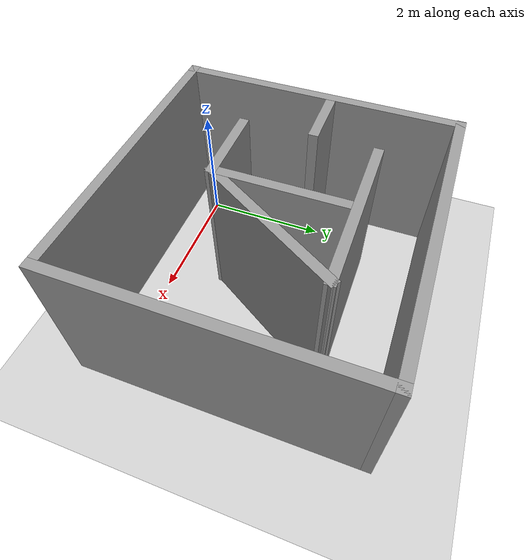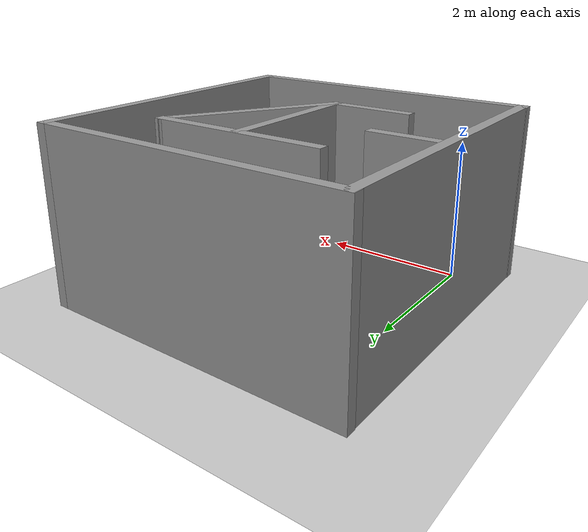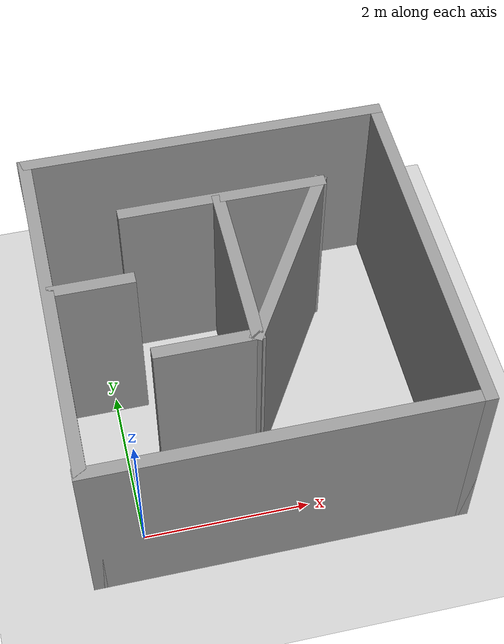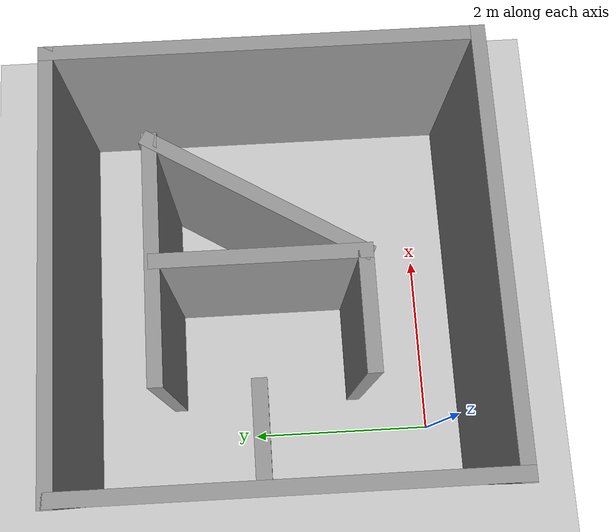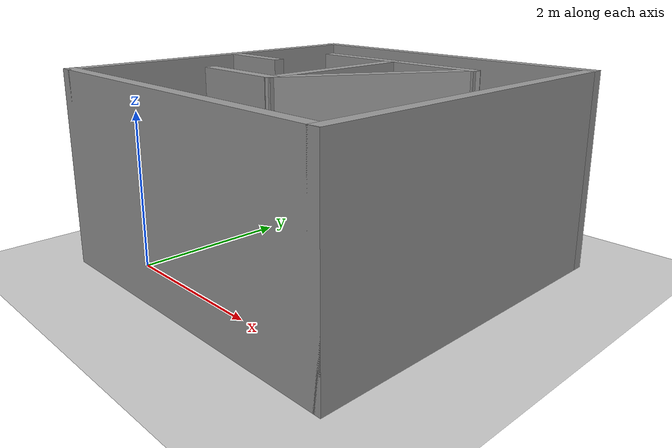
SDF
<sdf version="1.7">
 <world name="default">
  <light name="sun" type="directional">
   <pose>0 0 10 0 -0 0</pose>
   <diffuse>0.8 0.8 0.8 1</diffuse>
   <specular>0.2 0.2 0.2 1</specular>
   <attenuation>
    <range>1000</range>
    <constant>0.9</constant>
    <linear>0.01</linear>
    <quadratic>0.001</quadratic>
   </attenuation>
   <direction>-0.5 0.1 -0.9</direction>
   <spot><inner_angle>0</inner_angle><outer_angle>0</outer_angle><falloff>0</falloff></spot>
  </light>
  <model name="ground_plane">
   <static>1</static>
   <link name="link">
    <collision name="collision">
     <geometry><plane><normal>0 0 1</normal><size>100 100</size></plane></geometry>
     <surface>
      <contact><collide_bitmask>65535</collide_bitmask></contact>
      <friction><ode><mu>100</mu><mu2>50</mu2></ode></friction>
     </surface>
    </collision>
    <visual name="visual">
     <cast_shadows>0</cast_shadows>
     <geometry><plane><normal>0 0 1</normal><size>100 100</size></plane></geometry>
     <material>
      <script><uri>file://media/materials/scripts/gazebo.material</uri><name>Gazebo/Grey</name></script>
     </material>
    </visual>
   </link>
  </model>
  <gravity>0 0 -9.8</gravity>
  <magnetic_field>6e-06 2.3e-05 -4.2e-05</magnetic_field>
  <atmosphere type="adiabatic"/>
  <physics type="ode">
   <max_step_size>0.003</max_step_size>
   <real_time_factor>1</real_time_factor>
   <real_time_update_rate>1000</real_time_update_rate>
  </physics>
  <scene><ambient>0.4 0.4 0.4 1</ambient><background>0.7 0.7 0.7 1</background><shadows>1</shadows></scene>
  <spherical_coordinates>
   <surface_model>EARTH_WGS84</surface_model>
   <latitude_deg>0</latitude_deg>
   <longitude_deg>0</longitude_deg>
   <elevation>0</elevation>
   <heading_deg>0</heading_deg>
  </spherical_coordinates>
  <model name="placed_19_2_1">
   <pose>1.57119 1.70752 0 0 -0 0</pose>
   <link name="Wall_0">
    <collision name="Wall_0_Collision">
     <geometry><box><size>4.5 0.15 2.5</size></box></geometry>
     <pose>0 0 1.25 0 -0 0</pose>
    </collision>
    <visual name="Wall_0_Visual">
     <pose>0 0 1.25 0 -0 0</pose>
     <geometry><box><size>4.5 0.15 2.5</size></box></geometry>
     <material>
      <script><uri>file://media/materials/scripts/gazebo.material</uri><name>Gazebo/Grey</name></script>
      <ambient>1 1 1 1</ambient>
     </material>
     <meta><layer>0</layer></meta>
    </visual>
    <pose>-2.175 -0 0 0 -0 -1.5708</pose>
   </link>
   <link name="Wall_1">
    <collision name="Wall_1_Collision">
     <geometry><box><size>4.52 0.15 2.5</size></box></geometry>
     <pose>0 0 1.25 0 -0 0</pose>
    </collision>
    <visual name="Wall_1_Visual">
     <pose>0 0 1.25 0 -0 0</pose>
     <geometry><box><size>4.52 0.15 2.5</size></box></geometry>
     <material>
      <script><uri>file://media/materials/scripts/gazebo.material</uri><name>Gazebo/Grey</name></script>
      <ambient>1 1 1 1</ambient>
     </material>
     <meta><layer>0</layer></meta>
    </visual>
    <pose>-0 -2.175 0 0 -0 0</pose>
   </link>
   <link name="Wall_10">
    <collision name="Wall_10_Collision">
     <geometry><box><size>1.25 0.15 2.5</size></box></geometry>
     <pose>0 0 1.25 0 -0 0</pose>
    </collision>
    <visual name="Wall_10_Visual">
     <pose>0 0 1.25 0 -0 0</pose>
     <geometry><box><size>1.25 0.15 2.5</size></box></geometry>
     <material>
      <script><uri>file://media/materials/scripts/gazebo.material</uri><name>Gazebo/Grey</name></script>
      <ambient>1 1 1 1</ambient>
     </material>
     <meta><layer>0</layer></meta>
    </visual>
    <pose>-0.57 -0.87016 0 0 -0 3.14159</pose>
   </link>
   <link name="Wall_12">
    <collision name="Wall_12_Collision">
     <geometry><box><size>2.15 0.15 2.5</size></box></geometry>
     <pose>0 0 1.25 0 -0 0</pose>
    </collision>
    <visual name="Wall_12_Visual">
     <pose>0 0 1.25 0 -0 0</pose>
     <geometry><box><size>2.15 0.15 2.5</size></box></geometry>
     <material>
      <script><uri>file://media/materials/scripts/gazebo.material</uri><name>Gazebo/Grey</name></script>
      <ambient>1 1 1 1</ambient>
     </material>
     <meta><layer>0</layer></meta>
    </visual>
    <pose>-0.02 0.12984 0 0 -0 1.5708</pose>
   </link>
   <link name="Wall_2">
    <collision name="Wall_2_Collision">
     <geometry><box><size>4.5 0.15 2.5</size></box></geometry>
     <pose>0 0 1.25 0 -0 0</pose>
    </collision>
    <visual name="Wall_2_Visual">
     <pose>0 0 1.25 0 -0 0</pose>
     <geometry><box><size>4.5 0.15 2.5</size></box></geometry>
     <material>
      <script><uri>file://media/materials/scripts/gazebo.material</uri><name>Gazebo/Grey</name></script>
      <ambient>1 1 1 1</ambient>
     </material>
     <meta><layer>0</layer></meta>
    </visual>
    <pose>2.185 -0 0 0 -0 1.5708</pose>
   </link>
   <link name="Wall_3">
    <collision name="Wall_3_Collision">
     <geometry><box><size>4.52 0.15 2.5</size></box></geometry>
     <pose>0 0 1.25 0 -0 0</pose>
    </collision>
    <visual name="Wall_3_Visual">
     <pose>0 0 1.25 0 -0 0</pose>
     <geometry><box><size>4.52 0.15 2.5</size></box></geometry>
     <material>
      <script><uri>file://media/materials/scripts/gazebo.material</uri><name>Gazebo/Grey</name></script>
      <ambient>1 1 1 1</ambient>
     </material>
     <meta><layer>0</layer></meta>
    </visual>
    <pose>-0 2.175 0 0 -0 3.14159</pose>
   </link>
   <link name="Wall_6">
    <collision name="Wall_6_Collision">
     <geometry><box><size>1 0.15 2.5</size></box></geometry>
     <pose>0 0 1.25 0 -0 0</pose>
    </collision>
    <visual name="Wall_6_Visual">
     <pose>0 0 1.25 0 -0 0</pose>
     <geometry><box><size>1 0.15 2.5</size></box></geometry>
     <material>
      <script><uri>file://media/materials/scripts/gazebo.material</uri><name>Gazebo/Grey</name></script>
      <ambient>1 1 1 1</ambient>
     </material>
     <meta><layer>0</layer></meta>
    </visual>
    <pose>-1.68 0.205 0 0 -0 0</pose>
   </link>
   <link name="Wall_8">
    <collision name="Wall_8_Collision">
     <geometry><box><size>2.5 0.15 2.5</size></box></geometry>
     <pose>0 0 1.25 0 -0 0</pose>
    </collision>
    <visual name="Wall_8_Visual">
     <pose>0 0 1.25 0 -0 0</pose>
     <geometry><box><size>2.5 0.15 2.5</size></box></geometry>
     <material>
      <script><uri>file://media/materials/scripts/gazebo.material</uri><name>Gazebo/Grey</name></script>
      <ambient>1 1 1 1</ambient>
     </material>
     <meta><layer>0</layer></meta>
    </visual>
    <pose>0.03 1.165 0 0 -0 0</pose>
   </link>
   <link name="Wall_9">
    <collision name="Wall_9_Collision">
     <geometry><box><size>2.5254 0.15 2.5</size></box></geometry>
     <pose>0 0 1.25 0 -0 0</pose>
    </collision>
    <visual name="Wall_9_Visual">
     <pose>0 0 1.25 0 -0 0</pose>
     <geometry><box><size>2.5254 0.15 2.5</size></box></geometry>
     <material>
      <script><uri>file://media/materials/scripts/gazebo.material</uri><name>Gazebo/Grey</name></script>
      <ambient>1 1 1 1</ambient>
     </material>
     <meta><layer>0</layer></meta>
    </visual>
    <pose>0.5925 0.14742 0 0 -0 -2.11262</pose>
   </link>
   <static>1</static>
  </model>
 </world>
</sdf>
